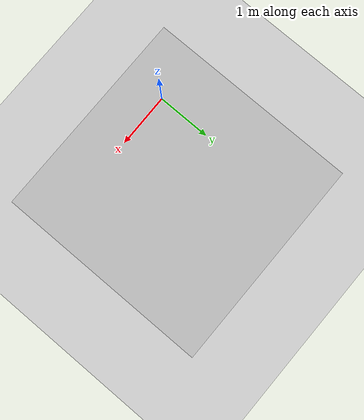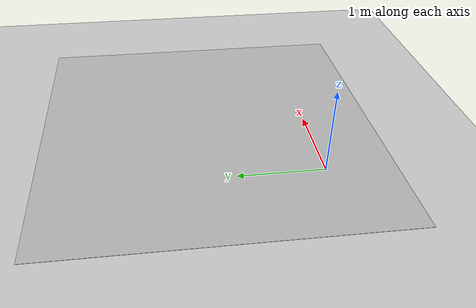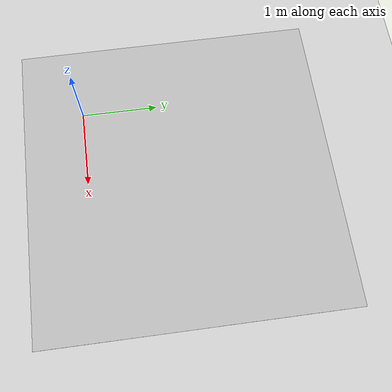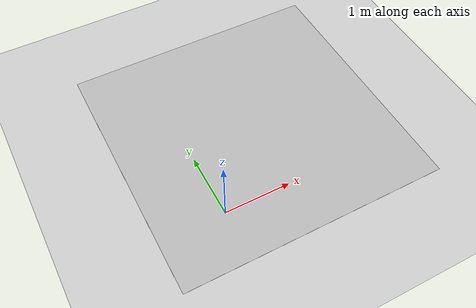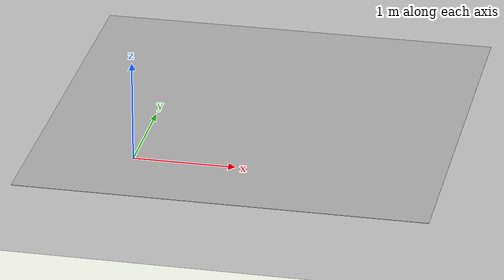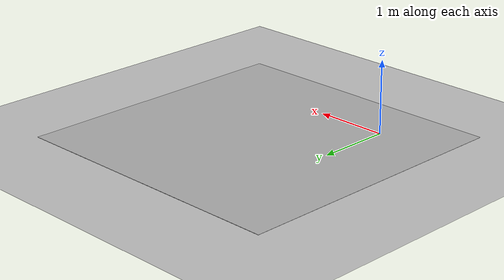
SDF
<?xml version="1.0"?>
<sdf version="1.6">
  <world name="default">

    <include>
      <uri>model://ground_plane</uri>
    </include>

    <include>
      <uri>model://sun</uri>
    </include>

    <scene>
      <shadows>true</shadows>
    </scene>

    <include>
      <uri>model://turtlebot3_course/course</uri>
      <pose> 1.0 1.2 0.01 0 0 -1.57</pose>
    </include>

    <gui fullscreen='0'>
      <camera name='user_camera'>
        <pose frame=''>0.319654 -0.235002 9.29441 0 1.5138 0.009599</pose>
        <view_controller>orbit</view_controller>
        <projection_type>perspective</projection_type>
      </camera>
    </gui>

    <physics type="ode">
      <real_time_update_rate>1000.0</real_time_update_rate>
      <max_step_size>0.001</max_step_size>
      <real_time_factor>1</real_time_factor>
      <ode>
        <solver>
          <type>quick</type>
          <iters>150</iters>
          <precon_iters>0</precon_iters>
          <sor>1.400000</sor>
          <use_dynamic_moi_rescaling>1</use_dynamic_moi_rescaling>
        </solver>
        <constraints>
          <cfm>0.00001</cfm>
          <erp>0.2</erp>
          <contact_max_correcting_vel>2000.000000</contact_max_correcting_vel>
          <contact_surface_layer>0.01000</contact_surface_layer>
        </constraints>
      </ode>
    </physics>

  </world>
</sdf>

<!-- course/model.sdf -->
<sdf version="1.6">
  <model name="course">
    <static>true</static>
    <link name="course_link">
      <collision name="course_collision">
        <geometry>
          <plane>
            <normal>0 0 1</normal>
            <size>4 4</size>
          </plane>
        </geometry>
        <surface>
          <friction>
            <ode>
              <mu>100</mu>
              <mu2>50</mu2>
            </ode>
          </friction>
        </surface>
      </collision>
      <visual name="course_visual">
        <cast_shadows>false</cast_shadows>
        <geometry>
	        <plane>
            <normal>0 0 1</normal>
            <size>4 4</size>
          </plane>
        </geometry>
	      <material>
          <script>
            <uri>model://turtlebot3_course/course/materials/scripts</uri>
            <uri>model://turtlebot3_course/course/materials/textures</uri>
            <name>course</name>
          </script>
        </material>
      </visual>
    </link>
  </model>
</sdf>
